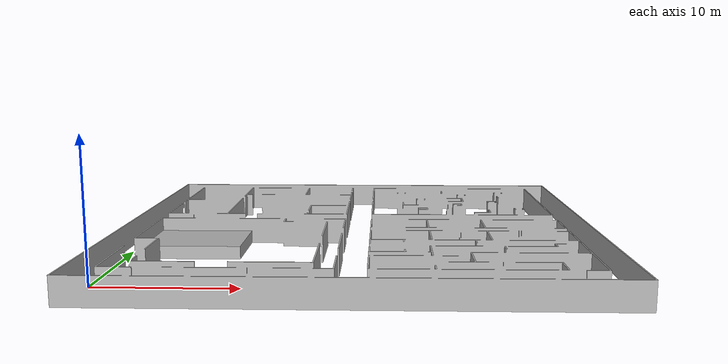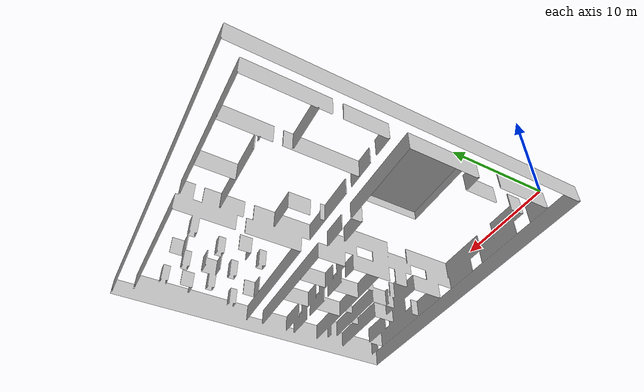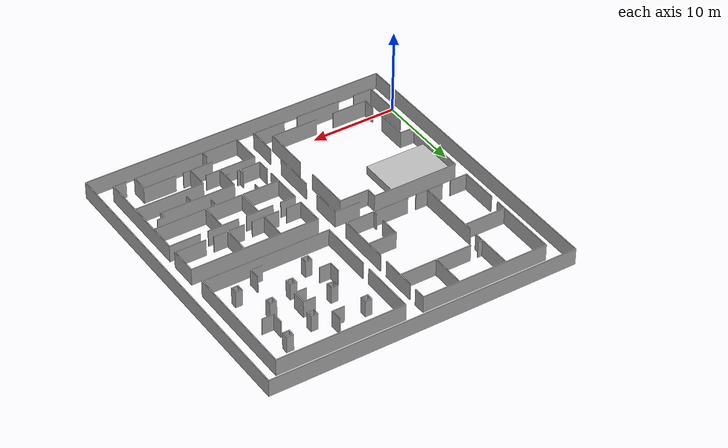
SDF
<?xml version="1.0"?>
<sdf version="1.6">
  <model name="wonderland/walls">
    <link name="1_link">
      <collision name="1_col">
        <geometry>
          <mesh>
            <uri>model://wonderland/walls/shape/heightmap.stl</uri>
          </mesh>
        </geometry>
      </collision>
      <visual name="1_vis">
        <geometry>
          <mesh>
            <uri>model://wonderland/walls/shape/heightmap.stl</uri>
          </mesh>
        </geometry>
      </visual>
      <pose>0 0 0 0 0 0</pose>
    </link>
    <static>true</static>
  </model>
</sdf>
